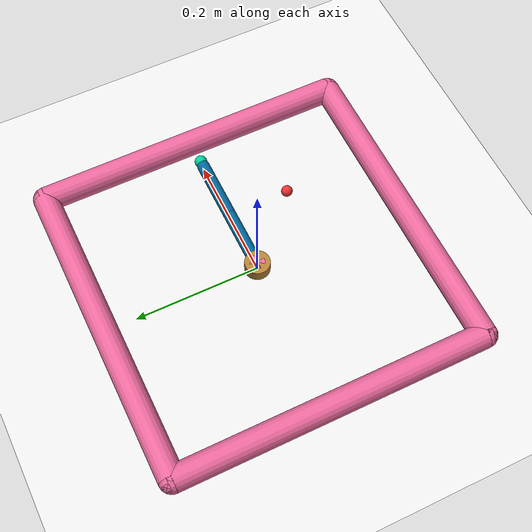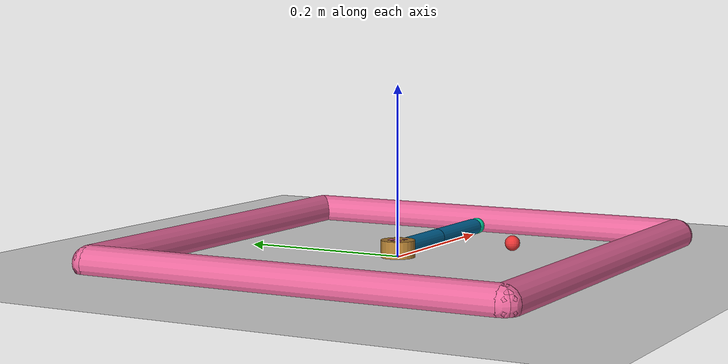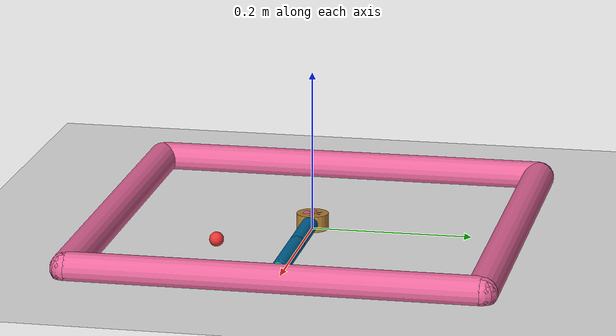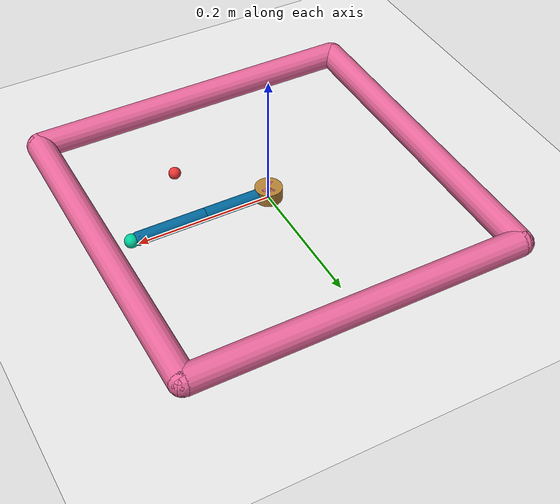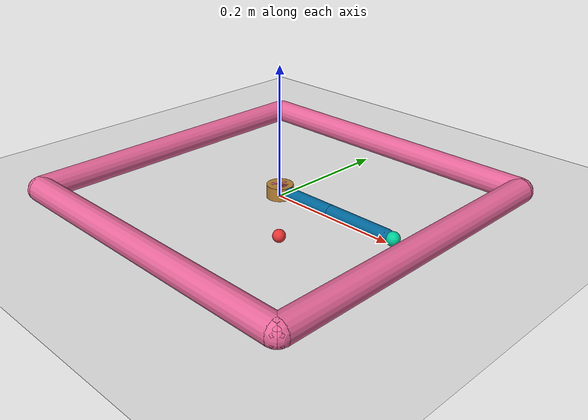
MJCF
<mujoco model="reacher">
  <compiler angle="radian" inertiafromgeom="true"/>
  <default>
    <joint armature="1" damping="1" limited="true"/>
    <geom contype="0" friction="1 0.1 0.1" rgba="0.7 0.7 0 1"/>
  </default>
  <option gravity="0 0 -9.81" integrator="RK4" timestep="0.01"/>
  <worldbody>
    <!-- Arena -->
    <geom conaffinity="0" contype="0" name="ground" pos="0 0 0" rgba="0.9 0.9 0.9 1" size="1 1 10" type="plane"/>
    <geom conaffinity="0" fromto="-0.25 -0.25 .01 0.25 -0.25 .01" name="sideS" rgba="0.9 0.4 0.6 1" size=".02" type="capsule"/>
    <geom conaffinity="0" fromto=" 0.25 -0.25 .01 0.25  0.25 .01" name="sideE" rgba="0.9 0.4 0.6 1" size=".02" type="capsule"/>
    <geom conaffinity="0" fromto="-0.25  0.25 .01 0.25  0.25 .01" name="sideN" rgba="0.9 0.4 0.6 1" size=".02" type="capsule"/>
    <geom conaffinity="0" fromto="-0.25 -0.25 .01 -0.25 0.25 .01" name="sideW" rgba="0.9 0.4 0.6 1" size=".02" type="capsule"/>

    <!-- Base -->
    <geom conaffinity="0" fromto="0 0 0 0 0 0.02"
	  name="root" rgba="0.9 0.4 0.6 1" size=".012" type="cylinder"/>

    <!-- Arm -->
    <body name="body0" pos="0 0 .01">
      <geom conaffinity="1" fromto="0 0 0 0.1 0 0"
	    name="link0" rgba="0.0 0.4 0.6 1" size=".01" type="capsule"/>

      <joint axis="0 0 1" limited="false" name="joint0" pos="0 0 0" type="hinge"/>
      <body name="body1" pos="0.1 0 0">
	<joint axis="0 0 1" limited="true" name="joint1" pos="0 0 0" range="-3.0 3.0" type="hinge"/>

	<geom conaffinity="1" fromto="0 0 0 0.1 0 0"
	      name="link1" rgba="0.0 0.4 0.6 1" size=".01" type="capsule"/>

	<body name="fingertip" pos="0.11 0 0">
	  <geom conaffinity="0"  name="fingertip" pos="0 0 0" rgba="0.0 0.8 0.6 1" size=".01" type="sphere"/>
	</body>

      </body>

    </body>

    <geom name="obs" contype="1" fromto="0 0 0 0 0 0.02" rgba="0.6 0.4 0.9 1" size=".012" type="cylinder"/>

    <!-- Target -->
    <body name="target" pos=".1 -.1 .01">
      <joint armature="0" axis="1 0 0" damping="0" limited="true" name="target_x" pos="0 0 0" range="-.27 .27" ref=".1" stiffness="0" type="slide"/>
      <joint armature="0" axis="0 1 0" damping="0" limited="true" name="target_y" pos="0 0 0" range="-.27 .27" ref="-.1" stiffness="0" type="slide"/>
      <geom conaffinity="0" contype="0" name="target" pos="0 0 0" rgba="0.9 0.2 0.2 1" size=".009" type="sphere"/>
    </body>

    <!-- Marker -->
    <geom name="marker" contype="0" conaffinity="0" rgba="0.0 0.9 0.9 1" size=".012" type="sphere"/>

    <!-- Object -->
    <body name="obj" pos="0 0 0">
      <joint armature="0" axis="1 0 0" damping="0.25" limited="true" name="obs_x" pos="0 0 0" range="-.2 .2" ref="0" stiffness="0" type="slide"/>
      <joint armature="0" axis="0 1 0" damping="0.25" limited="true" name="obs_y" pos="0 0 0" range="-.2 .2" ref="0" stiffness="0" type="slide"/>
      <geom  name="obj" contype="1" fromto="0 0 0 0 0 0.02" rgba="0.7 0.5 0.2 1" size=".02" type="cylinder"/>
    </body>

  </worldbody>
  <actuator>
    <motor ctrllimited="true" ctrlrange="-1.0 1.0" gear="200.0" joint="joint0"/>
    <motor ctrllimited="true" ctrlrange="-1.0 1.0" gear="200.0" joint="joint1"/>
  </actuator>
</mujoco>
